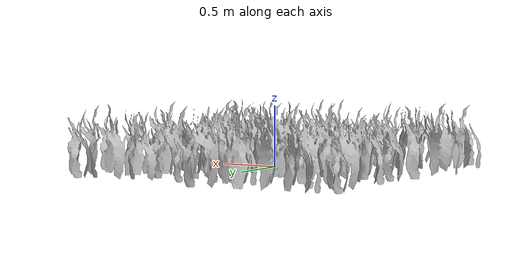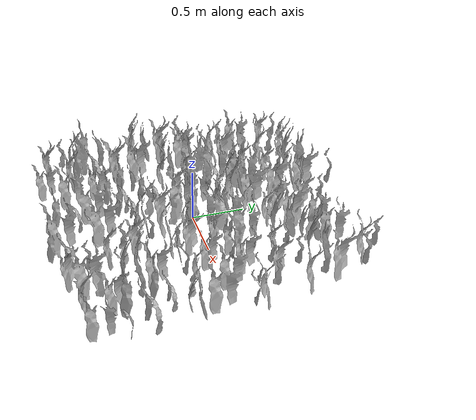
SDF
<?xml version="1.0"?>
<sdf version="1.9">
  <model name="seaweed">
    <static>true</static>
    <link name="link">
      <visual name="visual">
        <!-- Source OBJ is Y-up; rotate it into Gazebo's Z-up frame. -->
        <pose>0 0 0 1.57079632679 0 0</pose>
        <geometry>
          <mesh>
            <uri>model://cmra_models/seaweed/seaweed.obj</uri>
            <scale>0.5 0.5 0.5</scale>
          </mesh>
        </geometry>
      </visual>
    </link>
  </model>
</sdf>
